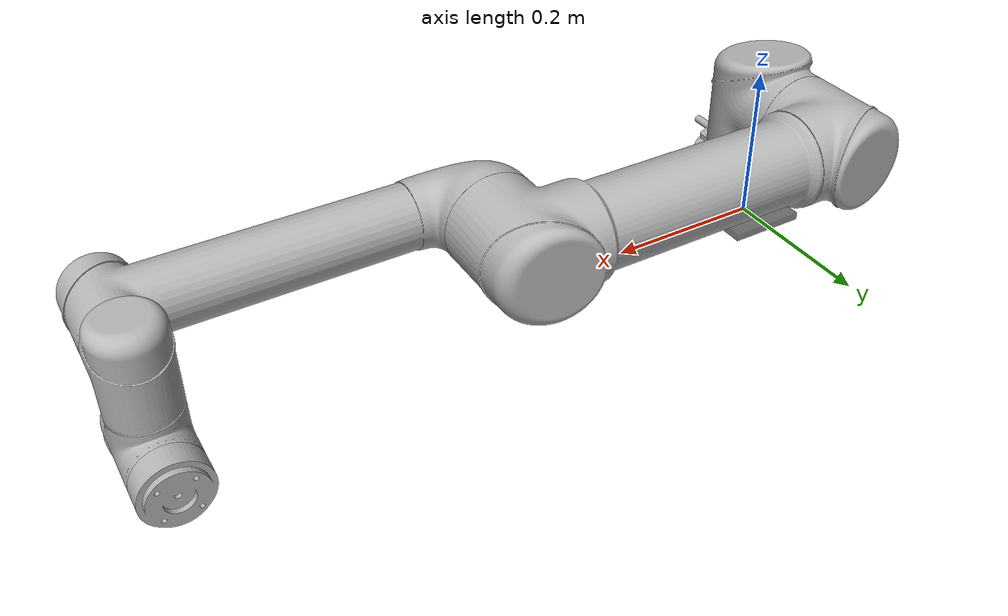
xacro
<?xml version="1.0"?>
<robot xmlns:xacro="http://www.ros.org/wiki/xacro"
       name="ur5" >

  <!-- common stuff -->
  <xacro:include filename="$(find ur5_description)/urdf/common.gazebo.xacro" />

  <!-- ur5 -->
  <xacro:include filename="$(find ur5_description)/urdf/ur5.urdf.xacro" />

  <!-- arm -->
  <xacro:ur5_robot prefix="" joint_limited="true"/>

</robot>

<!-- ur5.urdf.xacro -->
<robot xmlns:xacro="http://www.ros.org/wiki/xacro">

  <xacro:include filename="$(find ur5_description)/urdf/ur.transmission.xacro" />
  <xacro:include filename="$(find ur5_description)/urdf/ur.gazebo.xacro" />

  <!-- Inertia parameters -->
  <xacro:property name="base_mass" value="4.0" />  <!-- This mass might be incorrect -->
  <xacro:property name="shoulder_mass" value="3.7000" />
  <xacro:property name="upper_arm_mass" value="8.3930" />
  <xacro:property name="forearm_mass" value="2.2750" />
  <xacro:property name="wrist_1_mass" value="1.2190" />
  <xacro:property name="wrist_2_mass" value="1.2190" />
  <xacro:property name="wrist_3_mass" value="0.1879" />

  <xacro:property name="shoulder_cog" value="0.0 0.00193 -0.02561" />
  <xacro:property name="upper_arm_cog" value="0.0 -0.024201 0.2125" />
  <xacro:property name="forearm_cog" value="0.0 0.0265 0.11993" />
  <xacro:property name="wrist_1_cog" value="0.0 0.110949 0.01634" />
  <xacro:property name="wrist_2_cog" value="0.0 0.0018 0.11099" />
  <xacro:property name="wrist_3_cog" value="0.0 0.001159 0.0" />

  <!-- Kinematic model -->
  <!-- Properties from urcontrol.conf -->
  <xacro:property name="ur5_d1" value="0.089159" />
  <xacro:property name="ur5_a2" value="-0.42500" />
  <xacro:property name="ur5_a3" value="-0.39225" />
  <xacro:property name="ur5_d4" value="0.10915" />
  <xacro:property name="ur5_d5" value="0.09465" />
  <xacro:property name="ur5_d6" value="0.0823" />

  <!-- Arbitrary offsets for shoulder/elbow joints -->
  <xacro:property name="shoulder_offset" value="0.13585" />  <!-- measured from model -->
  <xacro:property name="elbow_offset" value="-0.1197" /> <!-- measured from model -->

  <!-- link lengths used in model -->
  <xacro:property name="shoulder_height" value="${ur5_d1}" />
  <xacro:property name="upper_arm_length" value="${-ur5_a2}" />
  <xacro:property name="forearm_length" value="${-ur5_a3}" />
  <xacro:property name="wrist_1_length" value="${ur5_d4 - elbow_offset - shoulder_offset}" />
  <xacro:property name="wrist_2_length" value="${ur5_d5}" />
  <xacro:property name="wrist_3_length" value="${ur5_d6}" />
  <!--property name="shoulder_height" value="0.089159" /-->
  <!--property name="shoulder_offset" value="0.13585" /-->  <!-- shoulder_offset - elbow_offset + wrist_1_length = 0.10915 -->
  <!--property name="upper_arm_length" value="0.42500" /-->
  <!--property name="elbow_offset" value="0.1197" /-->       <!-- CAD measured -->
  <!--property name="forearm_length" value="0.39225" /-->
  <!--property name="wrist_1_length" value="0.093" /-->     <!-- CAD measured -->
  <!--property name="wrist_2_length" value="0.09465" /-->   <!-- In CAD this distance is 0.930, but in the spec it is 0.09465 -->
  <!--property name="wrist_3_length" value="0.0823" /-->

  <xacro:property name="shoulder_radius" value="0.060" />   <!-- manually measured -->
  <xacro:property name="upper_arm_radius" value="0.054" />  <!-- manually measured -->
  <xacro:property name="elbow_radius" value="0.060" />      <!-- manually measured -->
  <xacro:property name="forearm_radius" value="0.040" />    <!-- manually measured -->
  <xacro:property name="wrist_radius" value="0.045" />      <!-- manually measured -->

  <xacro:macro name="cylinder_inertial" params="radius length mass *origin">
    <inertial>
      <mass value="${mass}" />
      <xacro:insert_block name="origin" />
      <inertia ixx="${0.0833333 * mass * (3 * radius * radius + length * length)}" ixy="0.0" ixz="0.0"
        iyy="${0.0833333 * mass * (3 * radius * radius + length * length)}" iyz="0.0"
        izz="${0.5 * mass * radius * radius}" />
    </inertial>
  </xacro:macro>

  <xacro:macro name="ur5_robot" params="prefix joint_limited">
    <link name="world"/>

    <link name="${prefix}rail0">
      <visual>
        <geometry>
          <box size="0.1 0.1 0.01"/>
        </geometry>
        <material name="rail0">
          <color rgba="0.192 0.192 0.192 0.7"/>
        </material>
      </visual>
    </link>

    <joint name="world_joint" type="fixed">
        <parent link="world"/>
        <child link="${prefix}rail0"/>
    </joint>

    <joint name="${prefix}rail_joint" type="prismatic">
      <parent link="${prefix}rail0"/>
      <child link="${prefix}rail1"/>
      <origin xyz="0 0 0.08" rpy="0 0 0"/>
      <axis xyz="0 1 0"/>
      <limit effort="30" velocity="1.0" lower="-2" upper="2"/>
    </joint>

    <link name="${prefix}rail1">
      <visual>
        <geometry>
          <box size="0.1 0.1 0.01"/>
        </geometry>
        <material name="rail1">
          <color rgba="0.7 0.4 0.2 0.7"/>
        </material>
      </visual>
    </link>

    <joint name="${prefix}base_joint" type="fixed">
      <parent link="${prefix}rail1"/>
      <child link="${prefix}base_link"/>
    </joint>

    <link name="${prefix}base_link" >
      <visual>
        <geometry>
          <mesh filename="package://ur5_description/meshes/ur5/visual/base.dae" />
        </geometry>
        <material name="LightGrey">
          <color rgba="0.7 0.7 0.7 1.0"/>
        </material>
      </visual>
      <collision>
        <geometry>
          <mesh filename="package://ur5_description/meshes/ur5/collision/base.stl" />
        </geometry>
      </collision>
      <xacro:cylinder_inertial radius="0.06" length="0.05" mass="${base_mass}">
        <origin xyz="0.0 0.0 0.0" rpy="0 0 0" />
      </xacro:cylinder_inertial>
    </link>

    <joint name="${prefix}shoulder_pan_joint" type="revolute">
      <parent link="${prefix}base_link" />
      <child link = "${prefix}shoulder_link" />
      <origin xyz="0.0 0.0 ${shoulder_height}" rpy="0.0 0.0 0.0" />
      <axis xyz="0 0 1" />
      <xacro:unless value="${joint_limited}">
        <limit lower="${-2.0 * pi}" upper="${2.0 * pi}" effort="150.0" velocity="3.15"/>
      </xacro:unless>
      <xacro:if value="${joint_limited}">
        <limit lower="${-pi}" upper="${pi}" effort="150.0" velocity="3.15"/>
      </xacro:if>
      <dynamics damping="0.0" friction="0.0"/>
    </joint>

    <link name="${prefix}shoulder_link">
      <visual>
        <geometry>
          <mesh filename="package://ur5_description/meshes/ur5/visual/shoulder.dae" />
        </geometry>
        <material name="LightGrey">
          <color rgba="0.7 0.7 0.7 1.0"/>
        </material>
      </visual>
      <collision>
        <geometry>
          <mesh filename="package://ur5_description/meshes/ur5/collision/shoulder.stl" />
        </geometry>
      </collision>
      <xacro:cylinder_inertial radius="0.06" length="0.15" mass="${shoulder_mass}">
        <origin xyz="0.0 0.0 0.0" rpy="0 0 0" />
      </xacro:cylinder_inertial>
    </link>

    <joint name="${prefix}shoulder_lift_joint" type="revolute">
      <parent link="${prefix}shoulder_link" />
      <child link = "${prefix}upper_arm_link" />
      <origin xyz="0.0 ${shoulder_offset} 0.0" rpy="0.0 ${pi / 2.0} 0.0" />
      <axis xyz="0 1 0" />
      <xacro:unless value="${joint_limited}">
        <limit lower="${-2.0 * pi}" upper="${2.0 * pi}" effort="150.0" velocity="3.15"/>
      </xacro:unless>
      <xacro:if value="${joint_limited}">
        <limit lower="${-pi}" upper="${pi}" effort="150.0" velocity="3.15"/>
      </xacro:if>
      <dynamics damping="0.0" friction="0.0"/>
    </joint>

    <link name="${prefix}upper_arm_link">
      <visual>
        <geometry>
          <mesh filename="package://ur5_description/meshes/ur5/visual/upperarm.dae" />
        </geometry>
        <material name="LightGrey">
          <color rgba="0.7 0.7 0.7 1.0"/>
        </material>
      </visual>
      <collision>
        <geometry>
          <mesh filename="package://ur5_description/meshes/ur5/collision/upperarm.stl" />
        </geometry>
      </collision>
      <xacro:cylinder_inertial radius="0.06" length="0.56" mass="${upper_arm_mass}">
        <origin xyz="0.0 0.0 0.28" rpy="0 0 0" />
      </xacro:cylinder_inertial>
    </link>

    <joint name="${prefix}elbow_joint" type="revolute">
      <parent link="${prefix}upper_arm_link" />
      <child link = "${prefix}forearm_link" />
      <origin xyz="0.0 ${elbow_offset} ${upper_arm_length}" rpy="0.0 0.0 0.0" />
      <axis xyz="0 1 0" />
      <xacro:unless value="${joint_limited}">
        <limit lower="${-pi}" upper="${pi}" effort="150.0" velocity="3.15"/>
      </xacro:unless>
      <xacro:if value="${joint_limited}">
        <limit lower="${-pi}" upper="${pi}" effort="150.0" velocity="3.15"/>
      </xacro:if>
      <dynamics damping="0.0" friction="0.0"/>
    </joint>

    <link name="${prefix}forearm_link">
      <visual>
        <geometry>
          <mesh filename="package://ur5_description/meshes/ur5/visual/forearm.dae" />
        </geometry>
        <material name="LightGrey">
          <color rgba="0.7 0.7 0.7 1.0"/>
        </material>
      </visual>
      <collision>
        <geometry>
          <mesh filename="package://ur5_description/meshes/ur5/collision/forearm.stl" />
        </geometry>
      </collision>
      <xacro:cylinder_inertial radius="0.06" length="0.5" mass="${forearm_mass}">
        <origin xyz="0.0 0.0 0.25" rpy="0 0 0" />
      </xacro:cylinder_inertial>
    </link>

    <joint name="${prefix}wrist_1_joint" type="revolute">
      <parent link="${prefix}forearm_link" />
      <child link = "${prefix}wrist_1_link" />
      <origin xyz="0.0 0.0 ${forearm_length}" rpy="0.0 ${pi / 2.0} 0.0" />
      <axis xyz="0 1 0" />
      <xacro:unless value="${joint_limited}">
        <limit lower="${-2.0 * pi}" upper="${2.0 * pi}" effort="28.0" velocity="3.2"/>
      </xacro:unless>
      <xacro:if value="${joint_limited}">
        <limit lower="${-pi}" upper="${pi}" effort="28.0" velocity="3.2"/>
      </xacro:if>
      <dynamics damping="0.0" friction="0.0"/>
    </joint>

    <link name="${prefix}wrist_1_link">
      <visual>
        <geometry>
          <mesh filename="package://ur5_description/meshes/ur5/visual/wrist1.dae" />
        </geometry>
        <material name="LightGrey">
          <color rgba="0.7 0.7 0.7 1.0"/>
        </material>
      </visual>
      <collision>
        <geometry>
          <mesh filename="package://ur5_description/meshes/ur5/collision/wrist1.stl" />
        </geometry>
      </collision>
      <xacro:cylinder_inertial radius="0.6" length="0.12" mass="${wrist_1_mass}">
        <origin xyz="0.0 0.0 0.0" rpy="0 0 0" />
      </xacro:cylinder_inertial>
    </link>

    <joint name="${prefix}wrist_2_joint" type="revolute">
      <parent link="${prefix}wrist_1_link" />
      <child link = "${prefix}wrist_2_link" />
      <origin xyz="0.0 ${wrist_1_length} 0.0" rpy="0.0 0.0 0.0" />
      <axis xyz="0 0 1" />
      <xacro:unless value="${joint_limited}">
        <limit lower="${-2.0 * pi}" upper="${2.0 * pi}" effort="28.0" velocity="3.2"/>
      </xacro:unless>
      <xacro:if value="${joint_limited}">
        <limit lower="${-pi}" upper="${pi}" effort="28.0" velocity="3.2"/>
      </xacro:if>
      <dynamics damping="0.0" friction="0.0"/>
    </joint>

    <link name="${prefix}wrist_2_link">
      <visual>
        <geometry>
          <mesh filename="package://ur5_description/meshes/ur5/visual/wrist2.dae" />
        </geometry>
        <material name="LightGrey">
          <color rgba="0.7 0.7 0.7 1.0"/>
        </material>
      </visual>
      <collision>
        <geometry>
          <mesh filename="package://ur5_description/meshes/ur5/collision/wrist2.stl" />
        </geometry>
      </collision>
      <xacro:cylinder_inertial radius="0.6" length="0.12" mass="${wrist_2_mass}">
        <origin xyz="0.0 0.0 0.0" rpy="0 0 0" />
      </xacro:cylinder_inertial>
    </link>

    <joint name="${prefix}wrist_3_joint" type="revolute">
      <parent link="${prefix}wrist_2_link" />
      <child link = "${prefix}wrist_3_link" />
      <origin xyz="0.0 0.0 ${wrist_2_length}" rpy="0.0 0.0 0.0" />
      <axis xyz="0 1 0" />
      <xacro:unless value="${joint_limited}">
        <limit lower="${-2.0 * pi}" upper="${2.0 * pi}" effort="28.0" velocity="3.2"/>
      </xacro:unless>
      <xacro:if value="${joint_limited}">
        <limit lower="${-pi}" upper="${pi}" effort="28.0" velocity="3.2"/>
      </xacro:if>
      <dynamics damping="0.0" friction="0.0"/>
    </joint>

    <link name="${prefix}wrist_3_link">
      <visual>
        <geometry>
          <mesh filename="package://ur5_description/meshes/ur5/visual/wrist3.dae" />
        </geometry>
        <material name="LightGrey">
          <color rgba="0.7 0.7 0.7 1.0"/>
        </material>
      </visual>
      <collision>
        <geometry>
          <mesh filename="package://ur5_description/meshes/ur5/collision/wrist3.stl" />
        </geometry>
      </collision>
      <xacro:cylinder_inertial radius="0.6" length="0.12" mass="${wrist_3_mass}">
        <origin xyz="0.0 0.0 0.0" rpy="0 0 0" />
      </xacro:cylinder_inertial>
    </link>

    <joint name="${prefix}ee_fixed_joint" type="fixed">
      <parent link="${prefix}wrist_3_link" />
      <child link = "${prefix}ee_link" />
      <origin rpy="${-pi/2} 0 0" xyz="0 0.165 0"/>
    </joint>

    <link name="${prefix}ee_link">
      <collision>
        <geometry>
          <box size="0.01 0.01 0.01"/>
        </geometry>
        <origin rpy="0 0 0" xyz="-0.01 0 0"/>
      </collision>
    </link>

    <xacro:ur_arm_transmission prefix="${prefix}" />
    <xacro:ur_arm_gazebo prefix="${prefix}" />

    <!-- ROS base_link to UR 'Base' Coordinates transform -->
    <link name="${prefix}base"/>
    <joint name="${prefix}base_link-base_fixed_joint" type="fixed">
      <!-- NOTE: this rotation is only needed as long as base_link itself is
                 not corrected wrt the real robot (ie: rotated over 180
                 degrees)
      -->
      <origin xyz="0 0 0" rpy="0 0 ${-pi}"/>
      <parent link="${prefix}base_link"/>
      <child link="${prefix}base"/>
    </joint>

    <!-- Frame coincident with all-zeros TCP on UR controller -->
    <link name="${prefix}tool0"/>
    <joint name="${prefix}wrist_3_link-tool0_fixed_joint" type="fixed">
      <origin xyz="0 ${wrist_3_length} 0" rpy="${pi/-2.0} 0 0"/>
      <parent link="${prefix}wrist_3_link"/>
      <child link="${prefix}tool0"/>
    </joint>

    <link name="${prefix}_link_knife"/>
    <joint name="${prefix}_joint_knife" type="fixed">
        <origin rpy="0 0 0" xyz="0 0.21 0.039"/>
        <parent link="${prefix}ee_link"/>
        <child link="${prefix}_link_knife"/>
    </joint>
    <link name="${prefix}_link_spatula"/>
    <joint name="${prefix}_joint_spatula" type="fixed">
        <origin rpy="0 0 0" xyz="0 0.235 0"/>
        <parent link="${prefix}ee_link"/>
        <child link="${prefix}_link_spatula"/>
    </joint>
    <link name="${prefix}_link_scooper"/>
    <joint name="${prefix}_joint_scooper" type="fixed">
        <origin rpy="0 0 0" xyz="0 0.25 0"/>
        <parent link="${prefix}ee_link"/>
        <child link="${prefix}_link_scooper"/>
    </joint>
    <link name="${prefix}_link_spreader"/>
    <joint name="${prefix}_joint_spreader" type="fixed">
        <origin rpy="0 0 0" xyz="0 0.295 -0.002"/>
        <parent link="${prefix}ee_link"/>
        <child link="${prefix}_link_spreader"/>
    </joint>

  </xacro:macro>
</robot>
